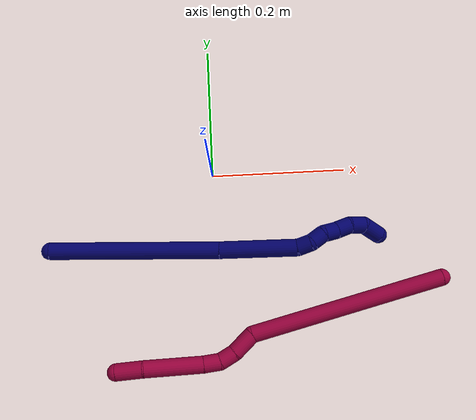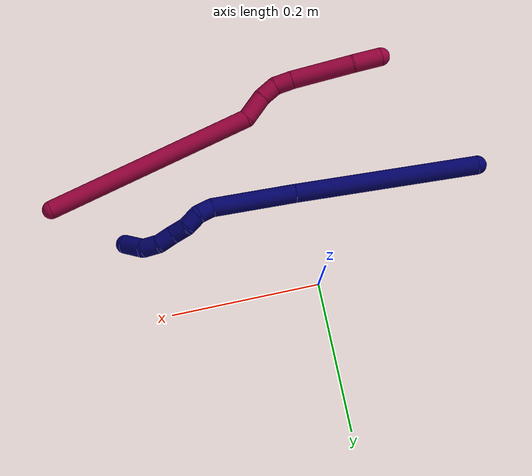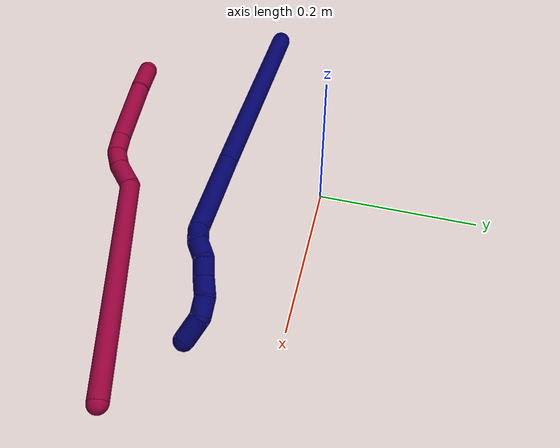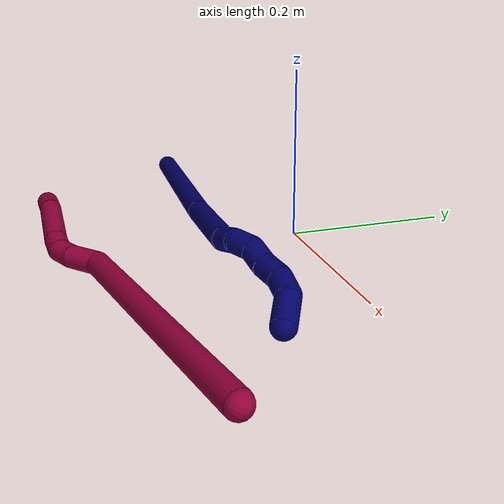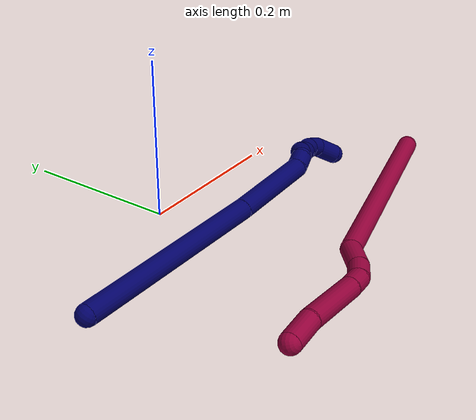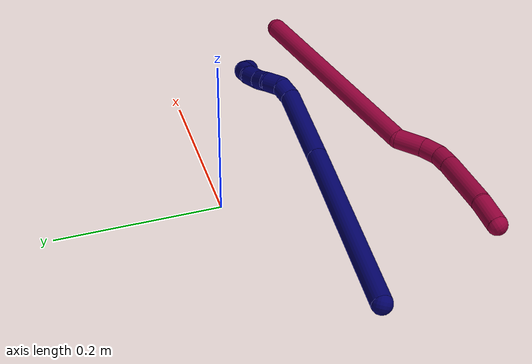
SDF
<sdf version="1.7">
 <world name="default">
  <model name="7">
   <static>0</static>
   <link name="7">
    <collision name="collision-cylinder-e_1_1_4">
     <pose>0.102706 -0.027231 0.061273 0.418207 0.992424 0.22877</pose>
     <geometry><cylinder><radius>0.0125</radius><length>0.245312</length></cylinder></geometry>
     <surface>
      <friction><ode><mu>1.16</mu><mu2>1.16</mu2><slip1>0</slip1><slip2>0</slip2></ode></friction>
      <contact><ode><kp>1e+06</kp><kd>1</kd><max_vel>0</max_vel><min_depth>0.001</min_depth></ode></contact>
     </surface>
    </collision>
    <visual name="visual-cylinder-e_1_1_4">
     <pose>0.102706 -0.027231 0.061273 0.418207 0.992424 0.22877</pose>
     <geometry><cylinder><radius>0.0125</radius><length>0.245312</length></cylinder></geometry>
     <material><ambient>0.003922 0 0.403922 1</ambient></material>
    </visual>
    <collision name="collision-cylinder-e_2_4_5">
     <pose>0.25225 -0.064735 0.15183 0.337384 0.98562 0.182407</pose>
     <geometry><cylinder><radius>0.0125</radius><length>0.112371</length></cylinder></geometry>
     <surface>
      <friction><ode><mu>1.16</mu><mu2>1.16</mu2><slip1>0</slip1><slip2>0</slip2></ode></friction>
      <contact><ode><kp>1e+06</kp><kd>1</kd><max_vel>0</max_vel><min_depth>0.001</min_depth></ode></contact>
     </surface>
    </collision>
    <visual name="visual-cylinder-e_2_4_5">
     <pose>0.25225 -0.064735 0.15183 0.337384 0.98562 0.182407</pose>
     <geometry><cylinder><radius>0.0125</radius><length>0.112371</length></cylinder></geometry>
     <material><ambient>0.003922 0 0.403922 1</ambient></material>
    </visual>
    <collision name="collision-cylinder-e_3_5_6">
     <pose>0.308052 -0.073353 0.18636 -0.305612 1.02045 -0.171956</pose>
     <geometry><cylinder><radius>0.0125</radius><length>0.021035</length></cylinder></geometry>
     <surface>
      <friction><ode><mu>1.16</mu><mu2>1.16</mu2><slip1>0</slip1><slip2>0</slip2></ode></friction>
      <contact><ode><kp>1e+06</kp><kd>1</kd><max_vel>0</max_vel><min_depth>0.001</min_depth></ode></contact>
     </surface>
    </collision>
    <visual name="visual-cylinder-e_3_5_6">
     <pose>0.308052 -0.073353 0.18636 -0.305612 1.02045 -0.171956</pose>
     <geometry><cylinder><radius>0.0125</radius><length>0.021035</length></cylinder></geometry>
     <material><ambient>0.003922 0 0.403922 1</ambient></material>
    </visual>
    <collision name="collision-cylinder-e_4_6_7">
     <pose>0.327341 -0.069173 0.192167 -1.35207 1.32535 -1.1186</pose>
     <geometry><cylinder><radius>0.0125</radius><length>0.021287</length></cylinder></geometry>
     <surface>
      <friction><ode><mu>1.16</mu><mu2>1.16</mu2><slip1>0</slip1><slip2>0</slip2></ode></friction>
      <contact><ode><kp>1e+06</kp><kd>1</kd><max_vel>0</max_vel><min_depth>0.001</min_depth></ode></contact>
     </surface>
    </collision>
    <visual name="visual-cylinder-e_4_6_7">
     <pose>0.327341 -0.069173 0.192167 -1.35207 1.32535 -1.1186</pose>
     <geometry><cylinder><radius>0.0125</radius><length>0.021287</length></cylinder></geometry>
     <material><ambient>0.003922 0 0.403922 1</ambient></material>
    </visual>
    <collision name="collision-cylinder-e_5_7_8">
     <pose>0.348571 -0.068719 0.19259 1.63726 1.38278 1.44848</pose>
     <geometry><cylinder><radius>0.0125</radius><length>0.022201</length></cylinder></geometry>
     <surface>
      <friction><ode><mu>1.16</mu><mu2>1.16</mu2><slip1>0</slip1><slip2>0</slip2></ode></friction>
      <contact><ode><kp>1e+06</kp><kd>1</kd><max_vel>0</max_vel><min_depth>0.001</min_depth></ode></contact>
     </surface>
    </collision>
    <visual name="visual-cylinder-e_5_7_8">
     <pose>0.348571 -0.068719 0.19259 1.63726 1.38278 1.44848</pose>
     <geometry><cylinder><radius>0.0125</radius><length>0.022201</length></cylinder></geometry>
     <material><ambient>0.003922 0 0.403922 1</ambient></material>
    </visual>
    <collision name="collision-cylinder-e_6_8_9">
     <pose>0.371004 -0.071004 0.193839 0.15375 1.44967 0.136228</pose>
     <geometry><cylinder><radius>0.0125</radius><length>0.023227</length></cylinder></geometry>
     <surface>
      <friction><ode><mu>1.16</mu><mu2>1.16</mu2><slip1>0</slip1><slip2>0</slip2></ode></friction>
      <contact><ode><kp>1e+06</kp><kd>1</kd><max_vel>0</max_vel><min_depth>0.001</min_depth></ode></contact>
     </surface>
    </collision>
    <visual name="visual-cylinder-e_6_8_9">
     <pose>0.371004 -0.071004 0.193839 0.15375 1.44967 0.136228</pose>
     <geometry><cylinder><radius>0.0125</radius><length>0.023227</length></cylinder></geometry>
     <material><ambient>0.003922 0 0.403922 1</ambient></material>
    </visual>
    <collision name="collision-cylinder-e_7_9_10">
     <pose>0.393194 -0.075125 0.197099 1.12351 1.18481 0.801387</pose>
     <geometry><cylinder><radius>0.0125</radius><length>0.023017</length></cylinder></geometry>
     <surface>
      <friction><ode><mu>1.16</mu><mu2>1.16</mu2><slip1>0</slip1><slip2>0</slip2></ode></friction>
      <contact><ode><kp>1e+06</kp><kd>1</kd><max_vel>0</max_vel><min_depth>0.001</min_depth></ode></contact>
     </surface>
    </collision>
    <visual name="visual-cylinder-e_7_9_10">
     <pose>0.393194 -0.075125 0.197099 1.12351 1.18481 0.801387</pose>
     <geometry><cylinder><radius>0.0125</radius><length>0.023017</length></cylinder></geometry>
     <material><ambient>0.003922 0 0.403922 1</ambient></material>
    </visual>
    <collision name="collision-cylinder-e_8_10_2">
     <pose>0.414007 -0.091028 0.200346 1.45688 0.699119 0.628825</pose>
     <geometry><cylinder><radius>0.0125</radius><length>0.03155</length></cylinder></geometry>
     <surface>
      <friction><ode><mu>1.16</mu><mu2>1.16</mu2><slip1>0</slip1><slip2>0</slip2></ode></friction>
      <contact><ode><kp>1e+06</kp><kd>1</kd><max_vel>0</max_vel><min_depth>0.001</min_depth></ode></contact>
     </surface>
    </collision>
    <visual name="visual-cylinder-e_8_10_2">
     <pose>0.414007 -0.091028 0.200346 1.45688 0.699119 0.628825</pose>
     <geometry><cylinder><radius>0.0125</radius><length>0.03155</length></cylinder></geometry>
     <material><ambient>0.003922 0 0.403922 1</ambient></material>
    </visual>
    <collision name="collision-sphere-2">
     <pose>0.424159 -0.103024 0.201718 0 -0 0</pose>
     <geometry><sphere><radius>0.0125</radius></sphere></geometry>
     <surface>
      <friction><ode><mu>1.16</mu><mu2>1.16</mu2><slip1>0</slip1><slip2>0</slip2></ode></friction>
      <contact><ode><kp>1e+06</kp><kd>1</kd><max_vel>0</max_vel><min_depth>0.001</min_depth></ode></contact>
     </surface>
    </collision>
    <visual name="visual-sphere-2">
     <pose>0.424159 -0.103024 0.201718 0 -0 0</pose>
     <geometry><sphere><radius>0.0125</radius></sphere></geometry>
     <material><ambient>0.003922 0 0.403922 1</ambient></material>
    </visual>
    <collision name="collision-sphere-10">
     <pose>0.403855 -0.079032 0.198973 0 -0 0</pose>
     <geometry><sphere><radius>0.0125</radius></sphere></geometry>
     <surface>
      <friction><ode><mu>1.16</mu><mu2>1.16</mu2><slip1>0</slip1><slip2>0</slip2></ode></friction>
      <contact><ode><kp>1e+06</kp><kd>1</kd><max_vel>0</max_vel><min_depth>0.001</min_depth></ode></contact>
     </surface>
    </collision>
    <visual name="visual-sphere-10">
     <pose>0.403855 -0.079032 0.198973 0 -0 0</pose>
     <geometry><sphere><radius>0.0125</radius></sphere></geometry>
     <material><ambient>0.003922 0 0.403922 1</ambient></material>
    </visual>
    <collision name="collision-sphere-9">
     <pose>0.382532 -0.071219 0.195226 0 -0 0</pose>
     <geometry><sphere><radius>0.0125</radius></sphere></geometry>
     <surface>
      <friction><ode><mu>1.16</mu><mu2>1.16</mu2><slip1>0</slip1><slip2>0</slip2></ode></friction>
      <contact><ode><kp>1e+06</kp><kd>1</kd><max_vel>0</max_vel><min_depth>0.001</min_depth></ode></contact>
     </surface>
    </collision>
    <visual name="visual-sphere-9">
     <pose>0.382532 -0.071219 0.195226 0 -0 0</pose>
     <geometry><sphere><radius>0.0125</radius></sphere></geometry>
     <material><ambient>0.003922 0 0.403922 1</ambient></material>
    </visual>
    <collision name="collision-sphere-4">
     <pose>0.205413 -0.054462 0.122546 0 -0 0</pose>
     <geometry><sphere><radius>0.0125</radius></sphere></geometry>
     <surface>
      <friction><ode><mu>1.16</mu><mu2>1.16</mu2><slip1>0</slip1><slip2>0</slip2></ode></friction>
      <contact><ode><kp>1e+06</kp><kd>1</kd><max_vel>0</max_vel><min_depth>0.001</min_depth></ode></contact>
     </surface>
    </collision>
    <visual name="visual-sphere-4">
     <pose>0.205413 -0.054462 0.122546 0 -0 0</pose>
     <geometry><sphere><radius>0.0125</radius></sphere></geometry>
     <material><ambient>0.003922 0 0.403922 1</ambient></material>
    </visual>
    <collision name="collision-sphere-1">
     <geometry><sphere><radius>0.0125</radius></sphere></geometry>
     <surface>
      <friction><ode><mu>1.16</mu><mu2>1.16</mu2><slip1>0</slip1><slip2>0</slip2></ode></friction>
      <contact><ode><kp>1e+06</kp><kd>1</kd><max_vel>0</max_vel><min_depth>0.001</min_depth></ode></contact>
     </surface>
    </collision>
    <visual name="visual-sphere-1">
     <geometry><sphere><radius>0.0125</radius></sphere></geometry>
     <material><ambient>0.003922 0 0.403922 1</ambient></material>
    </visual>
    <collision name="collision-sphere-8">
     <pose>0.359476 -0.070789 0.192452 0 -0 0</pose>
     <geometry><sphere><radius>0.0125</radius></sphere></geometry>
     <surface>
      <friction><ode><mu>1.16</mu><mu2>1.16</mu2><slip1>0</slip1><slip2>0</slip2></ode></friction>
      <contact><ode><kp>1e+06</kp><kd>1</kd><max_vel>0</max_vel><min_depth>0.001</min_depth></ode></contact>
     </surface>
    </collision>
    <visual name="visual-sphere-8">
     <pose>0.359476 -0.070789 0.192452 0 -0 0</pose>
     <geometry><sphere><radius>0.0125</radius></sphere></geometry>
     <material><ambient>0.003922 0 0.403922 1</ambient></material>
    </visual>
    <collision name="collision-sphere-5">
     <pose>0.299087 -0.075008 0.181114 0 -0 0</pose>
     <geometry><sphere><radius>0.0125</radius></sphere></geometry>
     <surface>
      <friction><ode><mu>1.16</mu><mu2>1.16</mu2><slip1>0</slip1><slip2>0</slip2></ode></friction>
      <contact><ode><kp>1e+06</kp><kd>1</kd><max_vel>0</max_vel><min_depth>0.001</min_depth></ode></contact>
     </surface>
    </collision>
    <visual name="visual-sphere-5">
     <pose>0.299087 -0.075008 0.181114 0 -0 0</pose>
     <geometry><sphere><radius>0.0125</radius></sphere></geometry>
     <material><ambient>0.003922 0 0.403922 1</ambient></material>
    </visual>
    <collision name="collision-sphere-6">
     <pose>0.317016 -0.071698 0.191605 0 -0 0</pose>
     <geometry><sphere><radius>0.0125</radius></sphere></geometry>
     <surface>
      <friction><ode><mu>1.16</mu><mu2>1.16</mu2><slip1>0</slip1><slip2>0</slip2></ode></friction>
      <contact><ode><kp>1e+06</kp><kd>1</kd><max_vel>0</max_vel><min_depth>0.001</min_depth></ode></contact>
     </surface>
    </collision>
    <visual name="visual-sphere-6">
     <pose>0.317016 -0.071698 0.191605 0 -0 0</pose>
     <geometry><sphere><radius>0.0125</radius></sphere></geometry>
     <material><ambient>0.003922 0 0.403922 1</ambient></material>
    </visual>
    <collision name="collision-sphere-7">
     <pose>0.337665 -0.066648 0.192728 0 -0 0</pose>
     <geometry><sphere><radius>0.0125</radius></sphere></geometry>
     <surface>
      <friction><ode><mu>1.16</mu><mu2>1.16</mu2><slip1>0</slip1><slip2>0</slip2></ode></friction>
      <contact><ode><kp>1e+06</kp><kd>1</kd><max_vel>0</max_vel><min_depth>0.001</min_depth></ode></contact>
     </surface>
    </collision>
    <visual name="visual-sphere-7">
     <pose>0.337665 -0.066648 0.192728 0 -0 0</pose>
     <geometry><sphere><radius>0.0125</radius></sphere></geometry>
     <material><ambient>0.003922 0 0.403922 1</ambient></material>
    </visual>
    <inertial>
     <pose>0.210913 -0.049492 0.119477 0 -0 0</pose>
     <mass>0.5</mass>
     <inertia>
      <ixx>0.000932</ixx>
      <ixy>0</ixy>
      <ixz>0</ixz>
      <iyy>0.001489</iyy>
      <iyz>0</iyz>
      <izz>-0.000835</izz>
     </inertia>
    </inertial>
   </link>
   <pose>-0.238572 -0.108238 0.036636 0.564892 0.313587 0.423438</pose>
  </model>
  <model name="8">
   <static>0</static>
   <link name="8">
    <collision name="collision-cylinder-e_1_1_4">
     <pose>0.004593 -0.019019 0.00067 1.53557 0.236814 0.228688</pose>
     <geometry><cylinder><radius>0.0125</radius><length>0.039155</length></cylinder></geometry>
     <surface>
      <friction><ode><mu>1.16</mu><mu2>1.16</mu2><slip1>0</slip1><slip2>0</slip2></ode></friction>
      <contact><ode><kp>1e+06</kp><kd>1</kd><max_vel>0</max_vel><min_depth>0.001</min_depth></ode></contact>
     </surface>
    </collision>
    <visual name="visual-cylinder-e_1_1_4">
     <pose>0.004593 -0.019019 0.00067 1.53557 0.236814 0.228688</pose>
     <geometry><cylinder><radius>0.0125</radius><length>0.039155</length></cylinder></geometry>
     <material><ambient>0.584314 0 0.227451 1</ambient></material>
    </visual>
    <collision name="collision-cylinder-e_2_4_5">
     <pose>0.026156 -0.076911 0.005087 1.47471 0.409918 0.373216</pose>
     <geometry><cylinder><radius>0.0125</radius><length>0.085161</length></cylinder></geometry>
     <surface>
      <friction><ode><mu>1.16</mu><mu2>1.16</mu2><slip1>0</slip1><slip2>0</slip2></ode></friction>
      <contact><ode><kp>1e+06</kp><kd>1</kd><max_vel>0</max_vel><min_depth>0.001</min_depth></ode></contact>
     </surface>
    </collision>
    <visual name="visual-cylinder-e_2_4_5">
     <pose>0.026156 -0.076911 0.005087 1.47471 0.409918 0.373216</pose>
     <geometry><cylinder><radius>0.0125</radius><length>0.085161</length></cylinder></geometry>
     <material><ambient>0.584314 0 0.227451 1</ambient></material>
    </visual>
    <collision name="collision-cylinder-e_3_5_6">
     <pose>0.047436 -0.127222 0.010773 1.40291 0.355728 0.301417</pose>
     <geometry><cylinder><radius>0.0125</radius><length>0.024751</length></cylinder></geometry>
     <surface>
      <friction><ode><mu>1.16</mu><mu2>1.16</mu2><slip1>0</slip1><slip2>0</slip2></ode></friction>
      <contact><ode><kp>1e+06</kp><kd>1</kd><max_vel>0</max_vel><min_depth>0.001</min_depth></ode></contact>
     </surface>
    </collision>
    <visual name="visual-cylinder-e_3_5_6">
     <pose>0.047436 -0.127222 0.010773 1.40291 0.355728 0.301417</pose>
     <geometry><cylinder><radius>0.0125</radius><length>0.024751</length></cylinder></geometry>
     <material><ambient>0.584314 0 0.227451 1</ambient></material>
    </visual>
    <collision name="collision-cylinder-e_4_6_7">
     <pose>0.05272 -0.149376 0.018087 1.10582 0.081058 0.05004</pose>
     <geometry><cylinder><radius>0.0125</radius><length>0.024059</length></cylinder></geometry>
     <surface>
      <friction><ode><mu>1.16</mu><mu2>1.16</mu2><slip1>0</slip1><slip2>0</slip2></ode></friction>
      <contact><ode><kp>1e+06</kp><kd>1</kd><max_vel>0</max_vel><min_depth>0.001</min_depth></ode></contact>
     </surface>
    </collision>
    <visual name="visual-cylinder-e_4_6_7">
     <pose>0.05272 -0.149376 0.018087 1.10582 0.081058 0.05004</pose>
     <geometry><cylinder><radius>0.0125</radius><length>0.024059</length></cylinder></geometry>
     <material><ambient>0.584314 0 0.227451 1</ambient></material>
    </visual>
    <collision name="collision-cylinder-e_5_7_8">
     <pose>0.052328 -0.174359 0.034401 0.916703 -0.075853 -0.037439</pose>
     <geometry><cylinder><radius>0.0125</radius><length>0.036057</length></cylinder></geometry>
     <surface>
      <friction><ode><mu>1.16</mu><mu2>1.16</mu2><slip1>0</slip1><slip2>0</slip2></ode></friction>
      <contact><ode><kp>1e+06</kp><kd>1</kd><max_vel>0</max_vel><min_depth>0.001</min_depth></ode></contact>
     </surface>
    </collision>
    <visual name="visual-cylinder-e_5_7_8">
     <pose>0.052328 -0.174359 0.034401 0.916703 -0.075853 -0.037439</pose>
     <geometry><cylinder><radius>0.0125</radius><length>0.036057</length></cylinder></geometry>
     <material><ambient>0.584314 0 0.227451 1</ambient></material>
    </visual>
    <collision name="collision-cylinder-e_6_8_2">
     <pose>0.079246 -0.327752 0.076763 1.34866 0.195769 0.156664</pose>
     <geometry><cylinder><radius>0.0125</radius><length>0.290817</length></cylinder></geometry>
     <surface>
      <friction><ode><mu>1.16</mu><mu2>1.16</mu2><slip1>0</slip1><slip2>0</slip2></ode></friction>
      <contact><ode><kp>1e+06</kp><kd>1</kd><max_vel>0</max_vel><min_depth>0.001</min_depth></ode></contact>
     </surface>
    </collision>
    <visual name="visual-cylinder-e_6_8_2">
     <pose>0.079246 -0.327752 0.076763 1.34866 0.195769 0.156664</pose>
     <geometry><cylinder><radius>0.0125</radius><length>0.290817</length></cylinder></geometry>
     <material><ambient>0.584314 0 0.227451 1</ambient></material>
    </visual>
    <collision name="collision-sphere-2">
     <pose>0.107531 -0.466879 0.108187 0 -0 0</pose>
     <geometry><sphere><radius>0.0125</radius></sphere></geometry>
     <surface>
      <friction><ode><mu>1.16</mu><mu2>1.16</mu2><slip1>0</slip1><slip2>0</slip2></ode></friction>
      <contact><ode><kp>1e+06</kp><kd>1</kd><max_vel>0</max_vel><min_depth>0.001</min_depth></ode></contact>
     </surface>
    </collision>
    <visual name="visual-sphere-2">
     <pose>0.107531 -0.466879 0.108187 0 -0 0</pose>
     <geometry><sphere><radius>0.0125</radius></sphere></geometry>
     <material><ambient>0.584314 0 0.227451 1</ambient></material>
    </visual>
    <collision name="collision-sphere-4">
     <pose>0.009186 -0.038038 0.00134 0 -0 0</pose>
     <geometry><sphere><radius>0.0125</radius></sphere></geometry>
     <surface>
      <friction><ode><mu>1.16</mu><mu2>1.16</mu2><slip1>0</slip1><slip2>0</slip2></ode></friction>
      <contact><ode><kp>1e+06</kp><kd>1</kd><max_vel>0</max_vel><min_depth>0.001</min_depth></ode></contact>
     </surface>
    </collision>
    <visual name="visual-sphere-4">
     <pose>0.009186 -0.038038 0.00134 0 -0 0</pose>
     <geometry><sphere><radius>0.0125</radius></sphere></geometry>
     <material><ambient>0.584314 0 0.227451 1</ambient></material>
    </visual>
    <collision name="collision-sphere-1">
     <geometry><sphere><radius>0.0125</radius></sphere></geometry>
     <surface>
      <friction><ode><mu>1.16</mu><mu2>1.16</mu2><slip1>0</slip1><slip2>0</slip2></ode></friction>
      <contact><ode><kp>1e+06</kp><kd>1</kd><max_vel>0</max_vel><min_depth>0.001</min_depth></ode></contact>
     </surface>
    </collision>
    <visual name="visual-sphere-1">
     <geometry><sphere><radius>0.0125</radius></sphere></geometry>
     <material><ambient>0.584314 0 0.227451 1</ambient></material>
    </visual>
    <collision name="collision-sphere-8">
     <pose>0.050961 -0.188626 0.045339 0 -0 0</pose>
     <geometry><sphere><radius>0.0125</radius></sphere></geometry>
     <surface>
      <friction><ode><mu>1.16</mu><mu2>1.16</mu2><slip1>0</slip1><slip2>0</slip2></ode></friction>
      <contact><ode><kp>1e+06</kp><kd>1</kd><max_vel>0</max_vel><min_depth>0.001</min_depth></ode></contact>
     </surface>
    </collision>
    <visual name="visual-sphere-8">
     <pose>0.050961 -0.188626 0.045339 0 -0 0</pose>
     <geometry><sphere><radius>0.0125</radius></sphere></geometry>
     <material><ambient>0.584314 0 0.227451 1</ambient></material>
    </visual>
    <collision name="collision-sphere-5">
     <pose>0.043126 -0.115784 0.008834 0 -0 0</pose>
     <geometry><sphere><radius>0.0125</radius></sphere></geometry>
     <surface>
      <friction><ode><mu>1.16</mu><mu2>1.16</mu2><slip1>0</slip1><slip2>0</slip2></ode></friction>
      <contact><ode><kp>1e+06</kp><kd>1</kd><max_vel>0</max_vel><min_depth>0.001</min_depth></ode></contact>
     </surface>
    </collision>
    <visual name="visual-sphere-5">
     <pose>0.043126 -0.115784 0.008834 0 -0 0</pose>
     <geometry><sphere><radius>0.0125</radius></sphere></geometry>
     <material><ambient>0.584314 0 0.227451 1</ambient></material>
    </visual>
    <collision name="collision-sphere-6">
     <pose>0.051746 -0.138659 0.012711 0 -0 0</pose>
     <geometry><sphere><radius>0.0125</radius></sphere></geometry>
     <surface>
      <friction><ode><mu>1.16</mu><mu2>1.16</mu2><slip1>0</slip1><slip2>0</slip2></ode></friction>
      <contact><ode><kp>1e+06</kp><kd>1</kd><max_vel>0</max_vel><min_depth>0.001</min_depth></ode></contact>
     </surface>
    </collision>
    <visual name="visual-sphere-6">
     <pose>0.051746 -0.138659 0.012711 0 -0 0</pose>
     <geometry><sphere><radius>0.0125</radius></sphere></geometry>
     <material><ambient>0.584314 0 0.227451 1</ambient></material>
    </visual>
    <collision name="collision-sphere-7">
     <pose>0.053694 -0.160093 0.023464 0 -0 0</pose>
     <geometry><sphere><radius>0.0125</radius></sphere></geometry>
     <surface>
      <friction><ode><mu>1.16</mu><mu2>1.16</mu2><slip1>0</slip1><slip2>0</slip2></ode></friction>
      <contact><ode><kp>1e+06</kp><kd>1</kd><max_vel>0</max_vel><min_depth>0.001</min_depth></ode></contact>
     </surface>
    </collision>
    <visual name="visual-sphere-7">
     <pose>0.053694 -0.160093 0.023464 0 -0 0</pose>
     <geometry><sphere><radius>0.0125</radius></sphere></geometry>
     <material><ambient>0.584314 0 0.227451 1</ambient></material>
    </visual>
    <inertial>
     <pose>0.059565 -0.23128 0.049451 0 -0 0</pose>
     <mass>0.5</mass>
     <inertia>
      <ixx>0.002403</ixx>
      <ixy>0</ixy>
      <ixz>0</ixz>
      <iyy>0.000827</iyy>
      <iyz>0</iyz>
      <izz>0.00162</izz>
     </inertia>
    </inertial>
   </link>
   <pose>-0.148355 -0.283888 0.024016 -2.61272 0.988748 -0.972083</pose>
  </model>
 </world>
</sdf>
